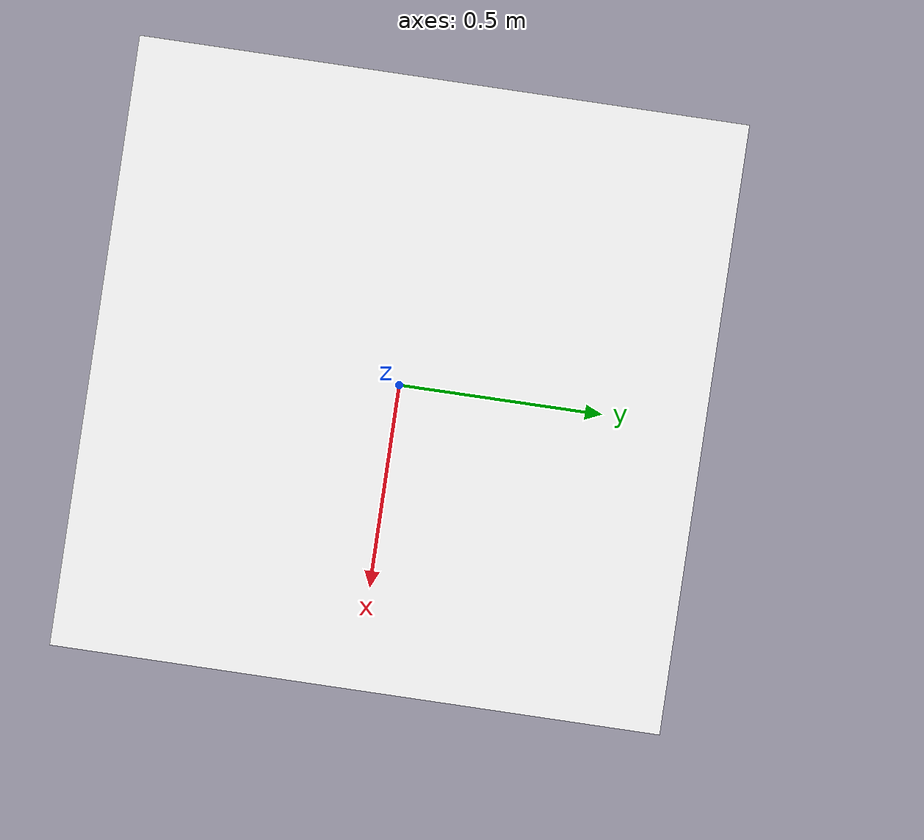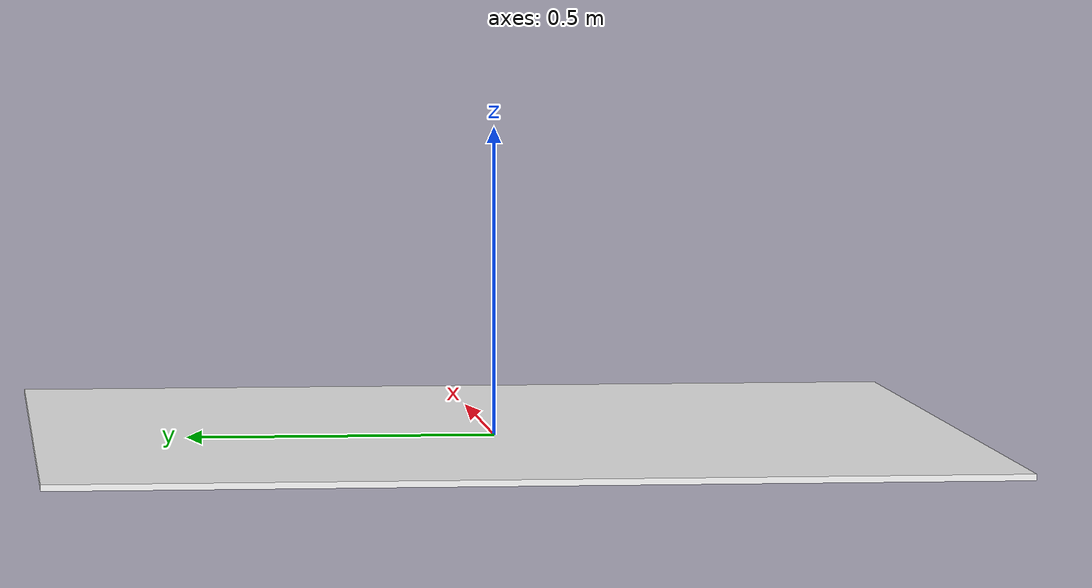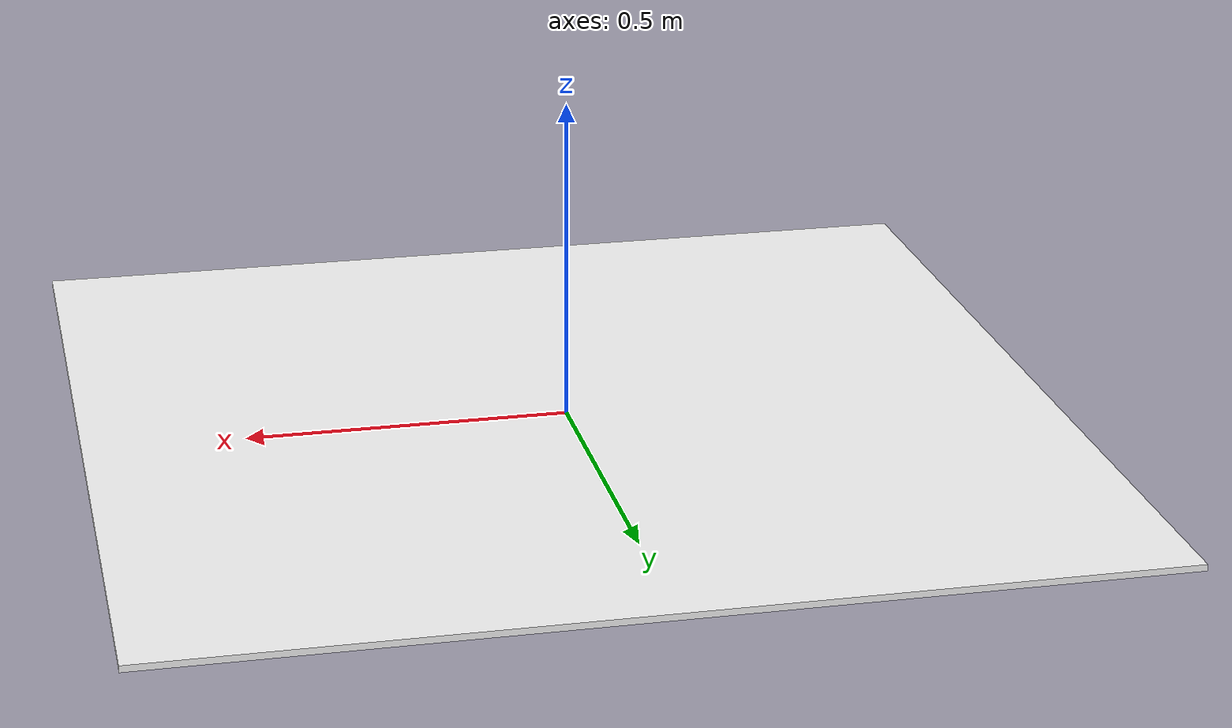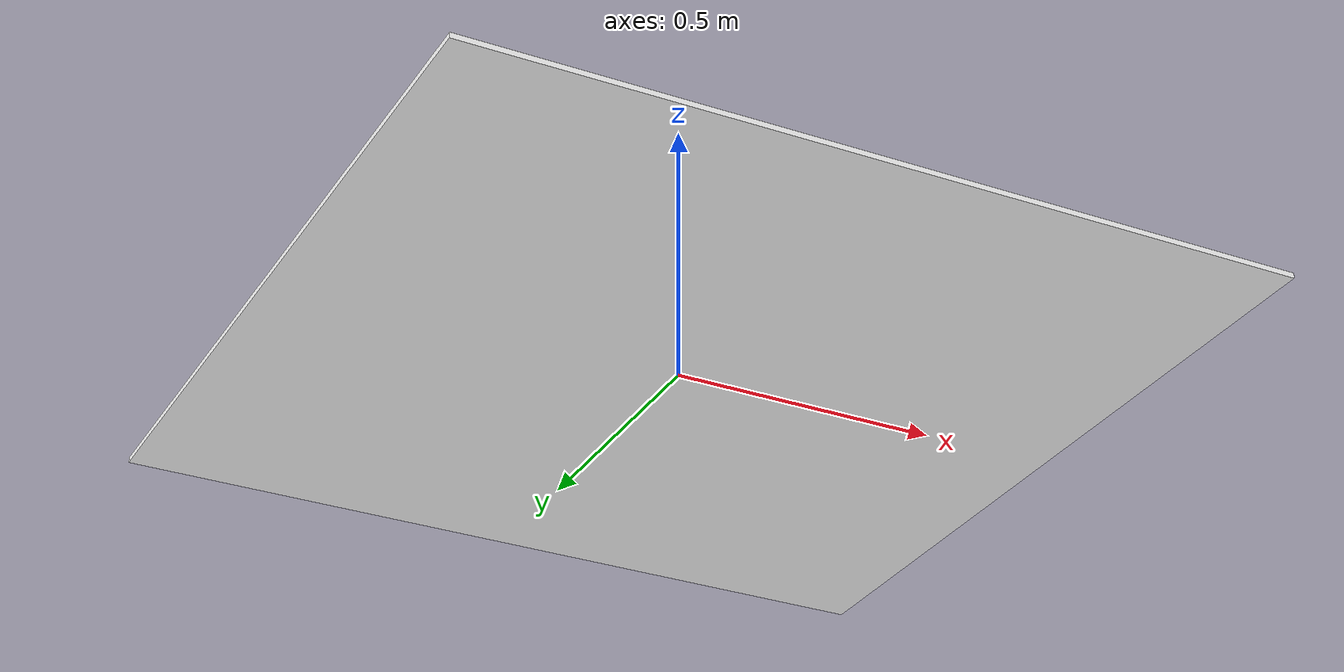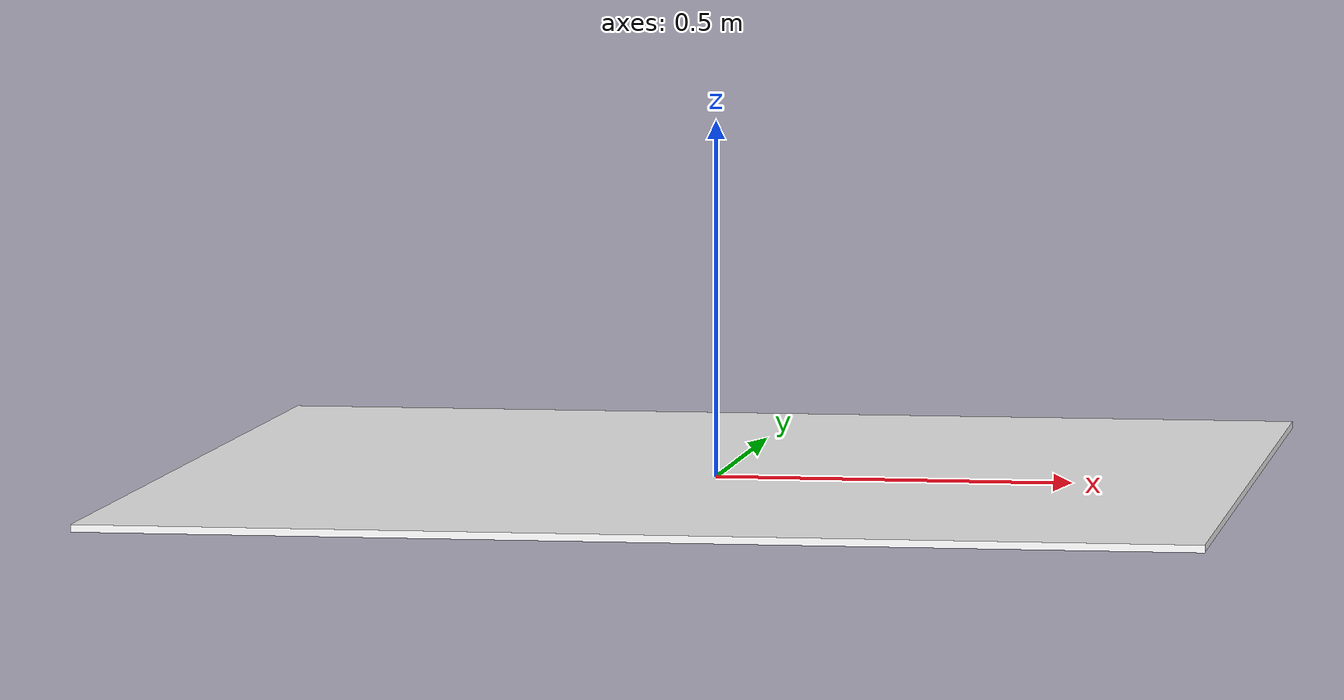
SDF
<?xml version="1.0" ?>
<sdf version="1.9">
  <model name="color_h_base">
    <static>true</static>

    <link name="base_link">
      <!-- Main base plate: same dimensions as h_base (1.5m x 1.5m) -->
      <collision name="base_collision">
        <geometry>
          <box>
            <size>1.5 1.5 0.01</size>
          </box>
        </geometry>
      </collision>

      <visual name="base_visual">
        <pose>0 0 0.005 0 0 0</pose>
        <geometry>
          <box>
            <size>1.5 1.5 0.01</size>
          </box>
        </geometry>
        <material>
          <ambient>1.0 1.0 1.0 1</ambient>
          <diffuse>1.0 1.0 1.0 1</diffuse>
          <specular>0.1 0.1 0.1 1</specular>
          <emissive>0.05 0.05 0.05 1</emissive>
          <pbr>
            <metal>
              <albedo_map>model://color_h_base/materials/textures/base_h_color.png</albedo_map>
            </metal>
          </pbr>
        </material>
      </visual>
    </link>
  </model>
</sdf>
